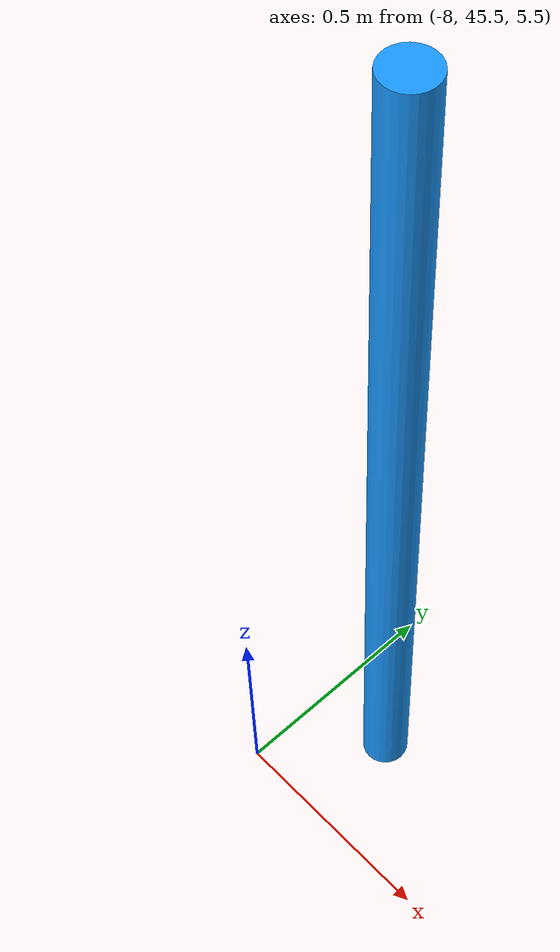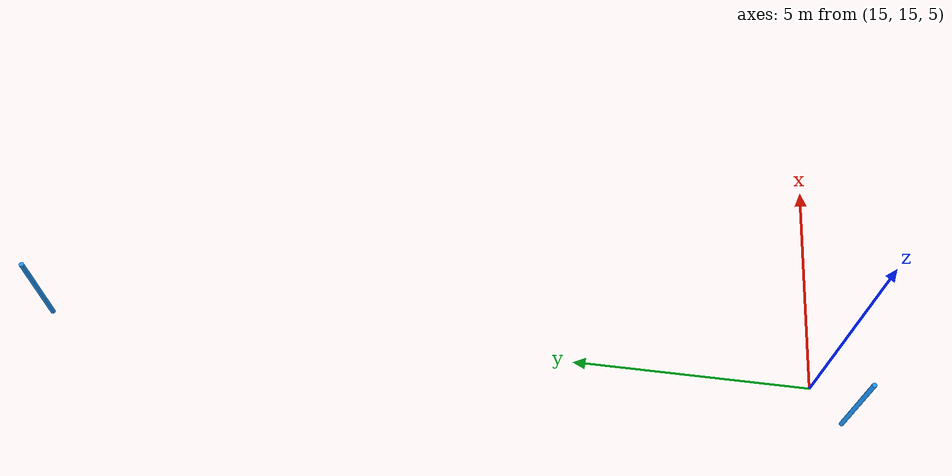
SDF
<sdf version="1.9">
 <world name="jezero_heldout_upper_rocks_k05_full">
  <physics name="1ms" type="ignored">
   <max_step_size>0.001</max_step_size>
   <real_time_factor>1</real_time_factor>
  </physics>
  <gravity>0 0 -3.721</gravity>
  <plugin filename="gz-sim-physics-system" name="gz::sim::systems::Physics"/>
  <plugin filename="gz-sim-user-commands-system" name="gz::sim::systems::UserCommands"/>
  <plugin filename="gz-sim-scene-broadcaster-system" name="gz::sim::systems::SceneBroadcaster"/>
  <scene><ambient>0.5 0.4 0.35 1</ambient><background>0.85 0.65 0.50 1</background><grid>false</grid></scene>
  <light type="directional" name="sun">
   <pose>0 0 100 0 0 0</pose>
   <diffuse>0.9 0.85 0.8 1</diffuse>
   <direction>-0.5 0.3 -0.8</direction>
  </light>
  <model name="waypoint_sol868">
   <static>true</static>
   <pose>73.14 -70.29 7.24 0 0 0</pose>
   <link name="link">
    <visual name="v">
     <geometry><cylinder><radius>0.05</radius><length>2.0</length></cylinder></geometry>
     <material><ambient>0.1 0.6 1 1</ambient><diffuse>0.1 0.6 1 1</diffuse></material>
    </visual>
   </link>
  </model>
  <model name="waypoint_sol870">
   <static>true</static>
   <pose>14.47 14.23 5.58 0 0 0</pose>
   <link name="link">
    <visual name="v">
     <geometry><cylinder><radius>0.05</radius><length>2.0</length></cylinder></geometry>
     <material><ambient>0.1 0.6 1 1</ambient><diffuse>0.1 0.6 1 1</diffuse></material>
    </visual>
   </link>
  </model>
  <model name="waypoint_sol871">
   <static>true</static>
   <pose>14.64 31.24 6.35 0 0 0</pose>
   <link name="link">
    <visual name="v">
     <geometry><cylinder><radius>0.05</radius><length>2.0</length></cylinder></geometry>
     <material><ambient>0.1 0.6 1 1</ambient><diffuse>0.1 0.6 1 1</diffuse></material>
    </visual>
   </link>
  </model>
  <model name="waypoint_sol872">
   <static>true</static>
   <pose>10.82 87.96 6.00 0 0 0</pose>
   <link name="link">
    <visual name="v">
     <geometry><cylinder><radius>0.05</radius><length>2.0</length></cylinder></geometry>
     <material><ambient>0.1 0.6 1 1</ambient><diffuse>0.1 0.6 1 1</diffuse></material>
    </visual>
   </link>
  </model>
  <model name="waypoint_sol884">
   <static>true</static>
   <pose>-7.78 45.7 6.60 0 0 0</pose>
   <link name="link">
    <visual name="v">
     <geometry><cylinder><radius>0.05</radius><length>2.0</length></cylinder></geometry>
     <material><ambient>0.1 0.6 1 1</ambient><diffuse>0.1 0.6 1 1</diffuse></material>
    </visual>
   </link>
  </model>
 </world>
</sdf>
